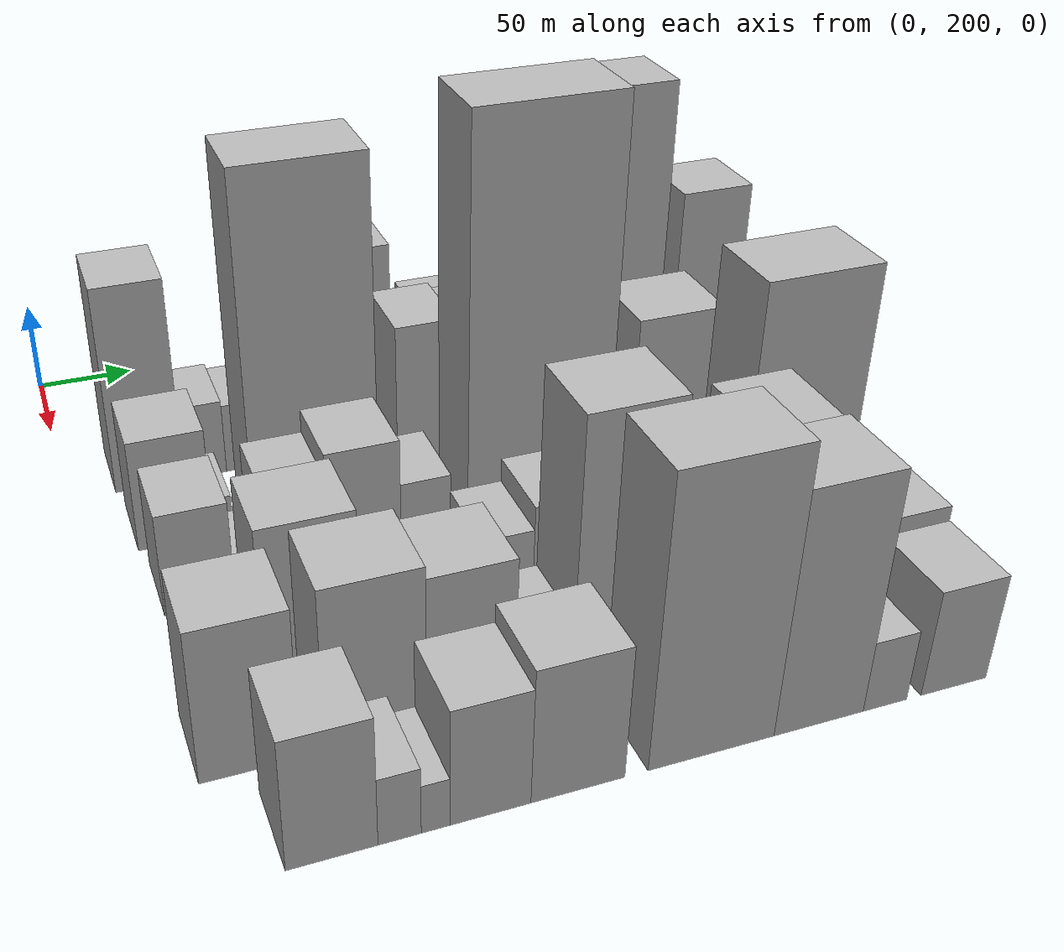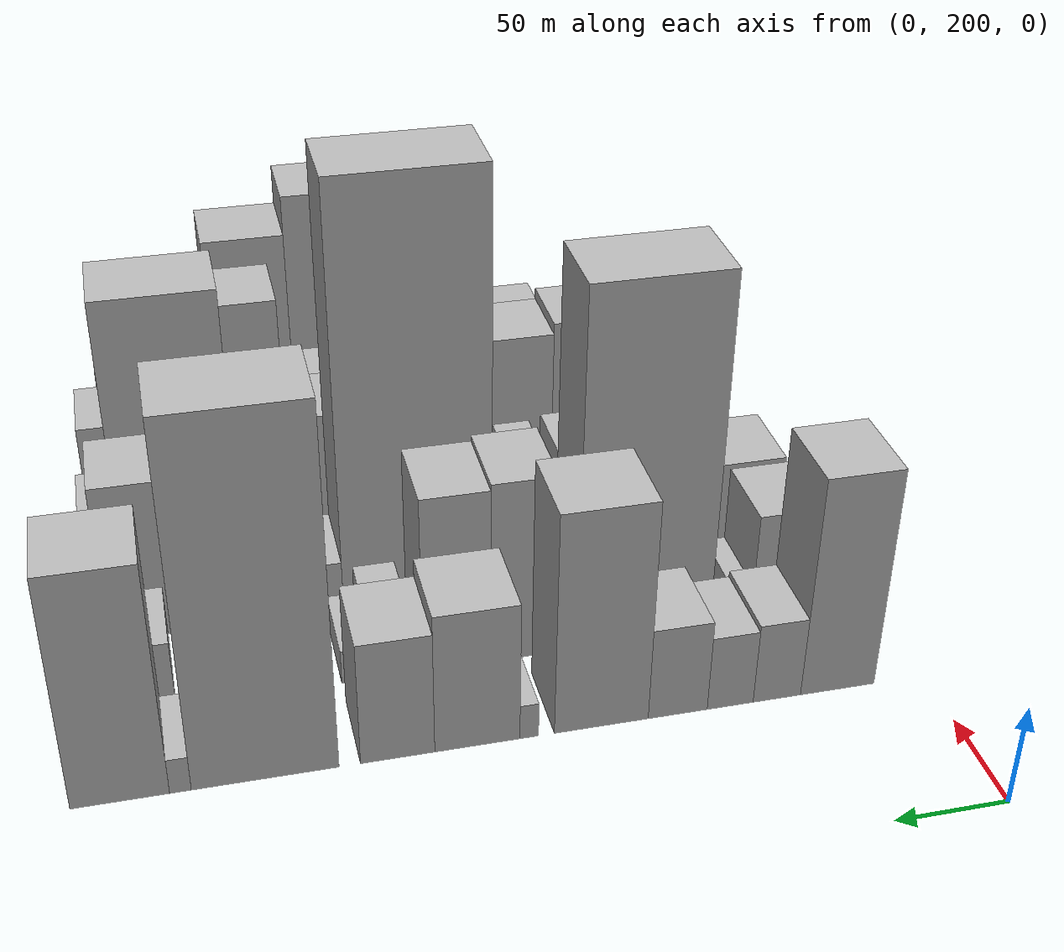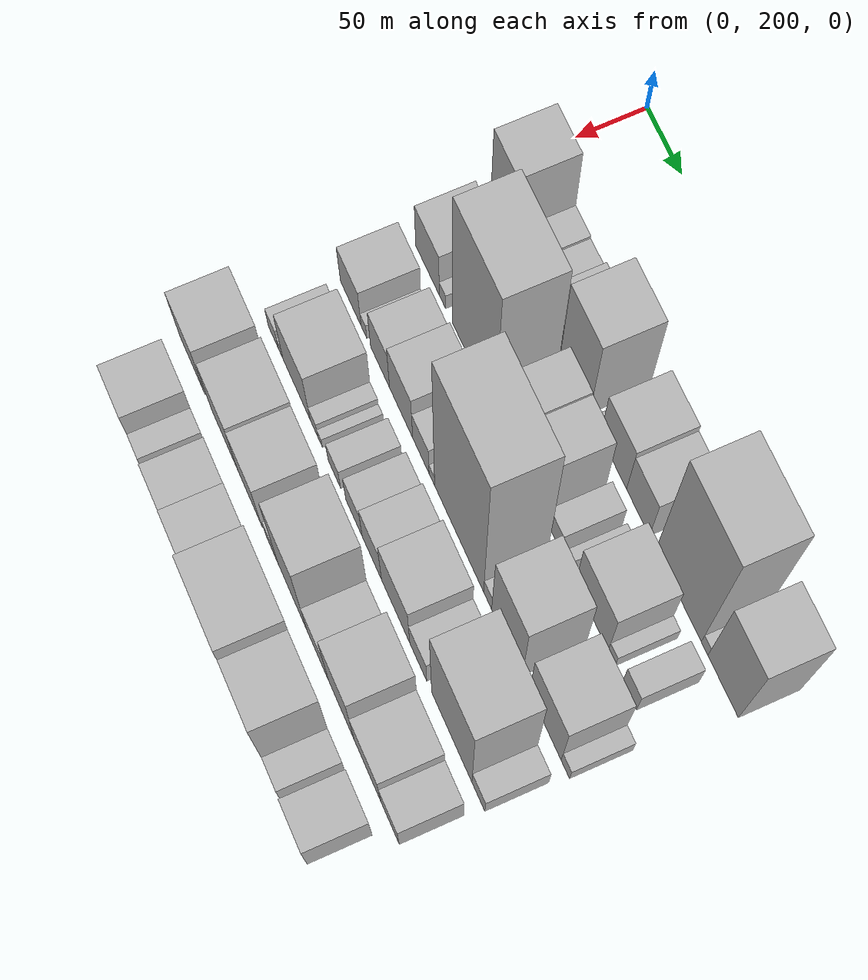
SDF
<sdf version="1.6">
 <world name="default">
  <model name="building_33">
   <static>1</static>
   <pose>100.0000 241.1143 0 0.000000 0.000000 0.000000</pose>
   <link name="link">
    <pose>0 0 57.00 0 0 0</pose>
    <collision name="collision"><geometry><box><size>40.0000 34.5283 114.0000</size></box></geometry></collision>
    <visual name="visual">
     <cast_shadows>0</cast_shadows>
     <geometry><box><size>40.0000 34.5283 114.0000</size></box></geometry>
     <material>
      <script>
       <uri>model://HANNAS_wall/materials/scripts</uri>
       <uri>model://HANNAS_wall/materials/textures</uri>
       <name>vrc/HANNAS_wall</name>
      </script>
     </material>
    </visual>
   </link>
  </model>
  <model name="building_34">
   <static>1</static>
   <pose>100.0000 269.3586 0 0.000000 0.000000 0.000000</pose>
   <link name="link">
    <pose>0 0 21.00 0 0 0</pose>
    <collision name="collision"><geometry><box><size>40.0000 21.9605 42.0000</size></box></geometry></collision>
    <visual name="visual">
     <cast_shadows>0</cast_shadows>
     <geometry><box><size>40.0000 21.9605 42.0000</size></box></geometry>
     <material>
      <script>
       <uri>model://HANNAS_wall/materials/scripts</uri>
       <uri>model://HANNAS_wall/materials/textures</uri>
       <name>vrc/HANNAS_wall</name>
      </script>
     </material>
    </visual>
   </link>
  </model>
  <model name="building_35">
   <static>1</static>
   <pose>100.0000 290.8779 0 0.000000 0.000000 0.000000</pose>
   <link name="link">
    <pose>0 0 19.50 0 0 0</pose>
    <collision name="collision"><geometry><box><size>40.0000 21.0780 39.0000</size></box></geometry></collision>
    <visual name="visual">
     <cast_shadows>0</cast_shadows>
     <geometry><box><size>40.0000 21.0780 39.0000</size></box></geometry>
     <material>
      <script>
       <uri>model://HANNAS_wall/materials/scripts</uri>
       <uri>model://HANNAS_wall/materials/textures</uri>
       <name>vrc/HANNAS_wall</name>
      </script>
     </material>
    </visual>
   </link>
  </model>
  <model name="building_36">
   <static>1</static>
   <pose>100.0000 314.7854 0 0.000000 0.000000 0.000000</pose>
   <link name="link">
    <pose>0 0 24.00 0 0 0</pose>
    <collision name="collision"><geometry><box><size>40.0000 26.7369 48.0000</size></box></geometry></collision>
    <visual name="visual">
     <cast_shadows>0</cast_shadows>
     <geometry><box><size>40.0000 26.7369 48.0000</size></box></geometry>
     <material>
      <script>
       <uri>model://HANNAS_wall/materials/scripts</uri>
       <uri>model://HANNAS_wall/materials/textures</uri>
       <name>vrc/HANNAS_wall</name>
      </script>
     </material>
    </visual>
   </link>
  </model>
  <model name="building_37">
   <static>1</static>
   <pose>100.0000 349.0575 0 0.000000 0.000000 0.000000</pose>
   <link name="link">
    <pose>0 0 57.00 0 0 0</pose>
    <collision name="collision"><geometry><box><size>40.0000 41.8073 114.0000</size></box></geometry></collision>
    <visual name="visual">
     <cast_shadows>0</cast_shadows>
     <geometry><box><size>40.0000 41.8073 114.0000</size></box></geometry>
     <material>
      <script>
       <uri>model://HANNAS_wall/materials/scripts</uri>
       <uri>model://HANNAS_wall/materials/textures</uri>
       <name>vrc/HANNAS_wall</name>
      </script>
     </material>
    </visual>
   </link>
  </model>
  <model name="building_38">
   <static>1</static>
   <pose>100.0000 381.0340 0 0.000000 0.000000 0.000000</pose>
   <link name="link">
    <pose>0 0 9.00 0 0 0</pose>
    <collision name="collision"><geometry><box><size>40.0000 8.1457 18.0000</size></box></geometry></collision>
    <visual name="visual">
     <cast_shadows>0</cast_shadows>
     <geometry><box><size>40.0000 8.1457 18.0000</size></box></geometry>
     <material>
      <script>
       <uri>model://HANNAS_wall/materials/scripts</uri>
       <uri>model://HANNAS_wall/materials/textures</uri>
       <name>vrc/HANNAS_wall</name>
      </script>
     </material>
    </visual>
   </link>
  </model>
  <model name="building_39">
   <static>1</static>
   <pose>100.0000 403.5314 0 0.000000 0.000000 0.000000</pose>
   <link name="link">
    <pose>0 0 36.00 0 0 0</pose>
    <collision name="collision"><geometry><box><size>40.0000 36.8492 72.0000</size></box></geometry></collision>
    <visual name="visual">
     <cast_shadows>0</cast_shadows>
     <geometry><box><size>40.0000 36.8492 72.0000</size></box></geometry>
     <material>
      <script>
       <uri>model://HANNAS_wall/materials/scripts</uri>
       <uri>model://HANNAS_wall/materials/textures</uri>
       <name>vrc/HANNAS_wall</name>
      </script>
     </material>
    </visual>
   </link>
  </model>
  <model name="building_40">
   <static>1</static>
   <pose>100.0000 437.7811 0 0.000000 0.000000 0.000000</pose>
   <link name="link">
    <pose>0 0 31.50 0 0 0</pose>
    <collision name="collision"><geometry><box><size>40.0000 31.6502 63.0000</size></box></geometry></collision>
    <visual name="visual">
     <cast_shadows>0</cast_shadows>
     <geometry><box><size>40.0000 31.6502 63.0000</size></box></geometry>
     <material>
      <script>
       <uri>model://HANNAS_wall/materials/scripts</uri>
       <uri>model://HANNAS_wall/materials/textures</uri>
       <name>vrc/HANNAS_wall</name>
      </script>
     </material>
    </visual>
   </link>
  </model>
  <model name="building_41">
   <static>1</static>
   <pose>100.0000 493.1594 0 0.000000 0.000000 0.000000</pose>
   <link name="link">
    <pose>0 0 90.00 0 0 0</pose>
    <collision name="collision"><geometry><box><size>40.0000 61.1064 180.0000</size></box></geometry></collision>
    <visual name="visual">
     <cast_shadows>0</cast_shadows>
     <geometry><box><size>40.0000 61.1064 180.0000</size></box></geometry>
     <material>
      <script>
       <uri>model://HANNAS_wall/materials/scripts</uri>
       <uri>model://HANNAS_wall/materials/textures</uri>
       <name>vrc/HANNAS_wall</name>
      </script>
     </material>
    </visual>
   </link>
  </model>
  <model name="building_42">
   <static>1</static>
   <pose>100.0000 528.1135 0 0.000000 0.000000 0.000000</pose>
   <link name="link">
    <pose>0 0 9.00 0 0 0</pose>
    <collision name="collision"><geometry><box><size>40.0000 8.8017 18.0000</size></box></geometry></collision>
    <visual name="visual">
     <cast_shadows>0</cast_shadows>
     <geometry><box><size>40.0000 8.8017 18.0000</size></box></geometry>
     <material>
      <script>
       <uri>model://HANNAS_wall/materials/scripts</uri>
       <uri>model://HANNAS_wall/materials/textures</uri>
       <name>vrc/HANNAS_wall</name>
      </script>
     </material>
    </visual>
   </link>
  </model>
  <model name="building_43">
   <static>1</static>
   <pose>100.0000 552.5174 0 0.000000 0.000000 0.000000</pose>
   <link name="link">
    <pose>0 0 58.50 0 0 0</pose>
    <collision name="collision"><geometry><box><size>40.0000 40.0060 117.0000</size></box></geometry></collision>
    <visual name="visual">
     <cast_shadows>0</cast_shadows>
     <geometry><box><size>40.0000 40.0060 117.0000</size></box></geometry>
     <material>
      <script>
       <uri>model://HANNAS_wall/materials/scripts</uri>
       <uri>model://HANNAS_wall/materials/textures</uri>
       <name>vrc/HANNAS_wall</name>
      </script>
     </material>
    </visual>
   </link>
  </model>
  <model name="building_81">
   <static>1</static>
   <pose>152.0000 244.6676 0 0.000000 0.000000 0.000000</pose>
   <link name="link">
    <pose>0 0 30.00 0 0 0</pose>
    <collision name="collision"><geometry><box><size>40.0000 35.9738 60.0000</size></box></geometry></collision>
    <visual name="visual">
     <cast_shadows>0</cast_shadows>
     <geometry><box><size>40.0000 35.9738 60.0000</size></box></geometry>
     <material>
      <script>
       <uri>model://HANNAS_wall/materials/scripts</uri>
       <uri>model://HANNAS_wall/materials/textures</uri>
       <name>vrc/HANNAS_wall</name>
      </script>
     </material>
    </visual>
   </link>
  </model>
  <model name="building_82">
   <static>1</static>
   <pose>152.0000 267.5932 0 0.000000 0.000000 0.000000</pose>
   <link name="link">
    <pose>0 0 10.50 0 0 0</pose>
    <collision name="collision"><geometry><box><size>40.0000 9.8774 21.0000</size></box></geometry></collision>
    <visual name="visual">
     <cast_shadows>0</cast_shadows>
     <geometry><box><size>40.0000 9.8774 21.0000</size></box></geometry>
     <material>
      <script>
       <uri>model://HANNAS_wall/materials/scripts</uri>
       <uri>model://HANNAS_wall/materials/textures</uri>
       <name>vrc/HANNAS_wall</name>
      </script>
     </material>
    </visual>
   </link>
  </model>
  <model name="building_83">
   <static>1</static>
   <pose>152.0000 314.2761 0 0.000000 0.000000 0.000000</pose>
   <link name="link">
    <pose>0 0 93.00 0 0 0</pose>
    <collision name="collision"><geometry><box><size>40.0000 63.4884 186.0000</size></box></geometry></collision>
    <visual name="visual">
     <cast_shadows>0</cast_shadows>
     <geometry><box><size>40.0000 63.4884 186.0000</size></box></geometry>
     <material>
      <script>
       <uri>model://HANNAS_wall/materials/scripts</uri>
       <uri>model://HANNAS_wall/materials/textures</uri>
       <name>vrc/HANNAS_wall</name>
      </script>
     </material>
    </visual>
   </link>
  </model>
  <model name="building_84">
   <static>1</static>
   <pose>152.0000 370.9635 0 0.000000 0.000000 0.000000</pose>
   <link name="link">
    <pose>0 0 48.00 0 0 0</pose>
    <collision name="collision"><geometry><box><size>40.0000 29.8863 96.0000</size></box></geometry></collision>
    <visual name="visual">
     <cast_shadows>0</cast_shadows>
     <geometry><box><size>40.0000 29.8863 96.0000</size></box></geometry>
     <material>
      <script>
       <uri>model://HANNAS_wall/materials/scripts</uri>
       <uri>model://HANNAS_wall/materials/textures</uri>
       <name>vrc/HANNAS_wall</name>
      </script>
     </material>
    </visual>
   </link>
  </model>
  <model name="building_85">
   <static>1</static>
   <pose>152.0000 401.4895 0 0.000000 0.000000 0.000000</pose>
   <link name="link">
    <pose>0 0 46.50 0 0 0</pose>
    <collision name="collision"><geometry><box><size>40.0000 31.1658 93.0000</size></box></geometry></collision>
    <visual name="visual">
     <cast_shadows>0</cast_shadows>
     <geometry><box><size>40.0000 31.1658 93.0000</size></box></geometry>
     <material>
      <script>
       <uri>model://HANNAS_wall/materials/scripts</uri>
       <uri>model://HANNAS_wall/materials/textures</uri>
       <name>vrc/HANNAS_wall</name>
      </script>
     </material>
    </visual>
   </link>
  </model>
  <model name="building_86">
   <static>1</static>
   <pose>152.0000 431.6163 0 0.000000 0.000000 0.000000</pose>
   <link name="link">
    <pose>0 0 16.50 0 0 0</pose>
    <collision name="collision"><geometry><box><size>40.0000 19.0876 33.0000</size></box></geometry></collision>
    <visual name="visual">
     <cast_shadows>0</cast_shadows>
     <geometry><box><size>40.0000 19.0876 33.0000</size></box></geometry>
     <material>
      <script>
       <uri>model://HANNAS_wall/materials/scripts</uri>
       <uri>model://HANNAS_wall/materials/textures</uri>
       <name>vrc/HANNAS_wall</name>
      </script>
     </material>
    </visual>
   </link>
  </model>
  <model name="building_87">
   <static>1</static>
   <pose>152.0000 449.3652 0 0.000000 0.000000 0.000000</pose>
   <link name="link">
    <pose>0 0 9.00 0 0 0</pose>
    <collision name="collision"><geometry><box><size>40.0000 8.4102 18.0000</size></box></geometry></collision>
    <visual name="visual">
     <cast_shadows>0</cast_shadows>
     <geometry><box><size>40.0000 8.4102 18.0000</size></box></geometry>
     <material>
      <script>
       <uri>model://HANNAS_wall/materials/scripts</uri>
       <uri>model://HANNAS_wall/materials/textures</uri>
       <name>vrc/HANNAS_wall</name>
      </script>
     </material>
    </visual>
   </link>
  </model>
  <model name="building_88">
   <static>1</static>
   <pose>152.0000 483.9628 0 0.000000 0.000000 0.000000</pose>
   <link name="link">
    <pose>0 0 37.50 0 0 0</pose>
    <collision name="collision"><geometry><box><size>40.0000 44.7851 75.0000</size></box></geometry></collision>
    <visual name="visual">
     <cast_shadows>0</cast_shadows>
     <geometry><box><size>40.0000 44.7851 75.0000</size></box></geometry>
     <material>
      <script>
       <uri>model://HANNAS_wall/materials/scripts</uri>
       <uri>model://HANNAS_wall/materials/textures</uri>
       <name>vrc/HANNAS_wall</name>
      </script>
     </material>
    </visual>
   </link>
  </model>
  <model name="building_89">
   <static>1</static>
   <pose>152.0000 511.2450 0 0.000000 0.000000 0.000000</pose>
   <link name="link">
    <pose>0 0 10.50 0 0 0</pose>
    <collision name="collision"><geometry><box><size>40.0000 9.7792 21.0000</size></box></geometry></collision>
    <visual name="visual">
     <cast_shadows>0</cast_shadows>
     <geometry><box><size>40.0000 9.7792 21.0000</size></box></geometry>
     <material>
      <script>
       <uri>model://HANNAS_wall/materials/scripts</uri>
       <uri>model://HANNAS_wall/materials/textures</uri>
       <name>vrc/HANNAS_wall</name>
      </script>
     </material>
    </visual>
   </link>
  </model>
  <model name="building_90">
   <static>1</static>
   <pose>152.0000 535.3604 0 0.000000 0.000000 0.000000</pose>
   <link name="link">
    <pose>0 0 18.00 0 0 0</pose>
    <collision name="collision"><geometry><box><size>40.0000 18.4517 36.0000</size></box></geometry></collision>
    <visual name="visual">
     <cast_shadows>0</cast_shadows>
     <geometry><box><size>40.0000 18.4517 36.0000</size></box></geometry>
     <material>
      <script>
       <uri>model://HANNAS_wall/materials/scripts</uri>
       <uri>model://HANNAS_wall/materials/textures</uri>
       <name>vrc/HANNAS_wall</name>
      </script>
     </material>
    </visual>
   </link>
  </model>
  <model name="building_133">
   <static>1</static>
   <pose>204.0000 245.8826 0 0.000000 0.000000 0.000000</pose>
   <link name="link">
    <pose>0 0 27.00 0 0 0</pose>
    <collision name="collision"><geometry><box><size>40.0000 32.1524 54.0000</size></box></geometry></collision>
    <visual name="visual">
     <cast_shadows>0</cast_shadows>
     <geometry><box><size>40.0000 32.1524 54.0000</size></box></geometry>
     <material>
      <script>
       <uri>model://HANNAS_wall/materials/scripts</uri>
       <uri>model://HANNAS_wall/materials/textures</uri>
       <name>vrc/HANNAS_wall</name>
      </script>
     </material>
    </visual>
   </link>
  </model>
  <model name="building_134">
   <static>1</static>
   <pose>204.0000 266.3261 0 0.000000 0.000000 0.000000</pose>
   <link name="link">
    <pose>0 0 10.50 0 0 0</pose>
    <collision name="collision"><geometry><box><size>40.0000 8.7346 21.0000</size></box></geometry></collision>
    <visual name="visual">
     <cast_shadows>0</cast_shadows>
     <geometry><box><size>40.0000 8.7346 21.0000</size></box></geometry>
     <material>
      <script>
       <uri>model://HANNAS_wall/materials/scripts</uri>
       <uri>model://HANNAS_wall/materials/textures</uri>
       <name>vrc/HANNAS_wall</name>
      </script>
     </material>
    </visual>
   </link>
  </model>
  <model name="building_135">
   <static>1</static>
   <pose>204.0000 291.2422 0 0.000000 0.000000 0.000000</pose>
   <link name="link">
    <pose>0 0 28.50 0 0 0</pose>
    <collision name="collision"><geometry><box><size>40.0000 29.0976 57.0000</size></box></geometry></collision>
    <visual name="visual">
     <cast_shadows>0</cast_shadows>
     <geometry><box><size>40.0000 29.0976 57.0000</size></box></geometry>
     <material>
      <script>
       <uri>model://HANNAS_wall/materials/scripts</uri>
       <uri>model://HANNAS_wall/materials/textures</uri>
       <name>vrc/HANNAS_wall</name>
      </script>
     </material>
    </visual>
   </link>
  </model>
  <model name="building_136">
   <static>1</static>
   <pose>204.0000 323.2574 0 0.000000 0.000000 0.000000</pose>
   <link name="link">
    <pose>0 0 34.50 0 0 0</pose>
    <collision name="collision"><geometry><box><size>40.0000 34.9329 69.0000</size></box></geometry></collision>
    <visual name="visual">
     <cast_shadows>0</cast_shadows>
     <geometry><box><size>40.0000 34.9329 69.0000</size></box></geometry>
     <material>
      <script>
       <uri>model://HANNAS_wall/materials/scripts</uri>
       <uri>model://HANNAS_wall/materials/textures</uri>
       <name>vrc/HANNAS_wall</name>
      </script>
     </material>
    </visual>
   </link>
  </model>
  <model name="building_137">
   <static>1</static>
   <pose>204.0000 352.9500 0 0.000000 0.000000 0.000000</pose>
   <link name="link">
    <pose>0 0 22.50 0 0 0</pose>
    <collision name="collision"><geometry><box><size>40.0000 24.4522 45.0000</size></box></geometry></collision>
    <visual name="visual">
     <cast_shadows>0</cast_shadows>
     <geometry><box><size>40.0000 24.4522 45.0000</size></box></geometry>
     <material>
      <script>
       <uri>model://HANNAS_wall/materials/scripts</uri>
       <uri>model://HANNAS_wall/materials/textures</uri>
       <name>vrc/HANNAS_wall</name>
      </script>
     </material>
    </visual>
   </link>
  </model>
  <model name="building_138">
   <static>1</static>
   <pose>204.0000 369.2969 0 0.000000 0.000000 0.000000</pose>
   <link name="link">
    <pose>0 0 9.00 0 0 0</pose>
    <collision name="collision"><geometry><box><size>40.0000 8.2417 18.0000</size></box></geometry></collision>
    <visual name="visual">
     <cast_shadows>0</cast_shadows>
     <geometry><box><size>40.0000 8.2417 18.0000</size></box></geometry>
     <material>
      <script>
       <uri>model://HANNAS_wall/materials/scripts</uri>
       <uri>model://HANNAS_wall/materials/textures</uri>
       <name>vrc/HANNAS_wall</name>
      </script>
     </material>
    </visual>
   </link>
  </model>
  <model name="building_139">
   <static>1</static>
   <pose>204.0000 409.0852 0 0.000000 0.000000 0.000000</pose>
   <link name="link">
    <pose>0 0 109.50 0 0 0</pose>
    <collision name="collision"><geometry><box><size>40.0000 71.3349 219.0000</size></box></geometry></collision>
    <visual name="visual">
     <cast_shadows>0</cast_shadows>
     <geometry><box><size>40.0000 71.3349 219.0000</size></box></geometry>
     <material>
      <script>
       <uri>model://HANNAS_wall/materials/scripts</uri>
       <uri>model://HANNAS_wall/materials/textures</uri>
       <name>vrc/HANNAS_wall</name>
      </script>
     </material>
    </visual>
   </link>
  </model>
  <model name="building_140">
   <static>1</static>
   <pose>204.0000 450.5262 0 0.000000 0.000000 0.000000</pose>
   <link name="link">
    <pose>0 0 13.50 0 0 0</pose>
    <collision name="collision"><geometry><box><size>40.0000 11.5470 27.0000</size></box></geometry></collision>
    <visual name="visual">
     <cast_shadows>0</cast_shadows>
     <geometry><box><size>40.0000 11.5470 27.0000</size></box></geometry>
     <material>
      <script>
       <uri>model://HANNAS_wall/materials/scripts</uri>
       <uri>model://HANNAS_wall/materials/textures</uri>
       <name>vrc/HANNAS_wall</name>
      </script>
     </material>
    </visual>
   </link>
  </model>
  <model name="building_141">
   <static>1</static>
   <pose>204.0000 477.8938 0 0.000000 0.000000 0.000000</pose>
   <link name="link">
    <pose>0 0 54.00 0 0 0</pose>
    <collision name="collision"><geometry><box><size>40.0000 43.1884 108.0000</size></box></geometry></collision>
    <visual name="visual">
     <cast_shadows>0</cast_shadows>
     <geometry><box><size>40.0000 43.1884 108.0000</size></box></geometry>
     <material>
      <script>
       <uri>model://HANNAS_wall/materials/scripts</uri>
       <uri>model://HANNAS_wall/materials/textures</uri>
       <name>vrc/HANNAS_wall</name>
      </script>
     </material>
    </visual>
   </link>
  </model>
  <model name="building_142">
   <static>1</static>
   <pose>204.0000 531.3603 0 0.000000 0.000000 0.000000</pose>
   <link name="link">
    <pose>0 0 42.00 0 0 0</pose>
    <collision name="collision"><geometry><box><size>40.0000 43.7445 84.0000</size></box></geometry></collision>
    <visual name="visual">
     <cast_shadows>0</cast_shadows>
     <geometry><box><size>40.0000 43.7445 84.0000</size></box></geometry>
     <material>
      <script>
       <uri>model://HANNAS_wall/materials/scripts</uri>
       <uri>model://HANNAS_wall/materials/textures</uri>
       <name>vrc/HANNAS_wall</name>
      </script>
     </material>
    </visual>
   </link>
  </model>
  <model name="building_143">
   <static>1</static>
   <pose>204.0000 559.0138 0 0.000000 0.000000 0.000000</pose>
   <link name="link">
    <pose>0 0 12.00 0 0 0</pose>
    <collision name="collision"><geometry><box><size>40.0000 11.5624 24.0000</size></box></geometry></collision>
    <visual name="visual">
     <cast_shadows>0</cast_shadows>
     <geometry><box><size>40.0000 11.5624 24.0000</size></box></geometry>
     <material>
      <script>
       <uri>model://HANNAS_wall/materials/scripts</uri>
       <uri>model://HANNAS_wall/materials/textures</uri>
       <name>vrc/HANNAS_wall</name>
      </script>
     </material>
    </visual>
   </link>
  </model>
  <model name="building_185">
   <static>1</static>
   <pose>256.0000 247.2263 0 0.000000 0.000000 0.000000</pose>
   <link name="link">
    <pose>0 0 15.00 0 0 0</pose>
    <collision name="collision"><geometry><box><size>40.0000 15.7489 30.0000</size></box></geometry></collision>
    <visual name="visual">
     <cast_shadows>0</cast_shadows>
     <geometry><box><size>40.0000 15.7489 30.0000</size></box></geometry>
     <material>
      <script>
       <uri>model://HANNAS_wall/materials/scripts</uri>
       <uri>model://HANNAS_wall/materials/textures</uri>
       <name>vrc/HANNAS_wall</name>
      </script>
     </material>
    </visual>
   </link>
  </model>
  <model name="building_186">
   <static>1</static>
   <pose>256.0000 258.7802 0 0.000000 0.000000 0.000000</pose>
   <link name="link">
    <pose>0 0 9.00 0 0 0</pose>
    <collision name="collision"><geometry><box><size>40.0000 7.3590 18.0000</size></box></geometry></collision>
    <visual name="visual">
     <cast_shadows>0</cast_shadows>
     <geometry><box><size>40.0000 7.3590 18.0000</size></box></geometry>
     <material>
      <script>
       <uri>model://HANNAS_wall/materials/scripts</uri>
       <uri>model://HANNAS_wall/materials/textures</uri>
       <name>vrc/HANNAS_wall</name>
      </script>
     </material>
    </visual>
   </link>
  </model>
  <model name="building_187">
   <static>1</static>
   <pose>256.0000 283.9196 0 0.000000 0.000000 0.000000</pose>
   <link name="link">
    <pose>0 0 37.50 0 0 0</pose>
    <collision name="collision"><geometry><box><size>40.0000 42.9198 75.0000</size></box></geometry></collision>
    <visual name="visual">
     <cast_shadows>0</cast_shadows>
     <geometry><box><size>40.0000 42.9198 75.0000</size></box></geometry>
     <material>
      <script>
       <uri>model://HANNAS_wall/materials/scripts</uri>
       <uri>model://HANNAS_wall/materials/textures</uri>
       <name>vrc/HANNAS_wall</name>
      </script>
     </material>
    </visual>
   </link>
  </model>
  <model name="building_188">
   <static>1</static>
   <pose>256.0000 311.2845 0 0.000000 0.000000 0.000000</pose>
   <link name="link">
    <pose>0 0 12.00 0 0 0</pose>
    <collision name="collision"><geometry><box><size>40.0000 11.8100 24.0000</size></box></geometry></collision>
    <visual name="visual">
     <cast_shadows>0</cast_shadows>
     <geometry><box><size>40.0000 11.8100 24.0000</size></box></geometry>
     <material>
      <script>
       <uri>model://HANNAS_wall/materials/scripts</uri>
       <uri>model://HANNAS_wall/materials/textures</uri>
       <name>vrc/HANNAS_wall</name>
      </script>
     </material>
    </visual>
   </link>
  </model>
  <model name="building_189">
   <static>1</static>
   <pose>256.0000 320.7090 0 0.000000 0.000000 0.000000</pose>
   <link name="link">
    <pose>0 0 7.50 0 0 0</pose>
    <collision name="collision"><geometry><box><size>40.0000 7.0390 15.0000</size></box></geometry></collision>
    <visual name="visual">
     <cast_shadows>0</cast_shadows>
     <geometry><box><size>40.0000 7.0390 15.0000</size></box></geometry>
     <material>
      <script>
       <uri>model://HANNAS_wall/materials/scripts</uri>
       <uri>model://HANNAS_wall/materials/textures</uri>
       <name>vrc/HANNAS_wall</name>
      </script>
     </material>
    </visual>
   </link>
  </model>
  <model name="building_190">
   <static>1</static>
   <pose>256.0000 342.7334 0 0.000000 0.000000 0.000000</pose>
   <link name="link">
    <pose>0 0 16.50 0 0 0</pose>
    <collision name="collision"><geometry><box><size>40.0000 19.0098 33.0000</size></box></geometry></collision>
    <visual name="visual">
     <cast_shadows>0</cast_shadows>
     <geometry><box><size>40.0000 19.0098 33.0000</size></box></geometry>
     <material>
      <script>
       <uri>model://HANNAS_wall/materials/scripts</uri>
       <uri>model://HANNAS_wall/materials/textures</uri>
       <name>vrc/HANNAS_wall</name>
      </script>
     </material>
    </visual>
   </link>
  </model>
  <model name="building_191">
   <static>1</static>
   <pose>256.0000 372.5297 0 0.000000 0.000000 0.000000</pose>
   <link name="link">
    <pose>0 0 22.50 0 0 0</pose>
    <collision name="collision"><geometry><box><size>40.0000 24.5828 45.0000</size></box></geometry></collision>
    <visual name="visual">
     <cast_shadows>0</cast_shadows>
     <geometry><box><size>40.0000 24.5828 45.0000</size></box></geometry>
     <material>
      <script>
       <uri>model://HANNAS_wall/materials/scripts</uri>
       <uri>model://HANNAS_wall/materials/textures</uri>
       <name>vrc/HANNAS_wall</name>
      </script>
     </material>
    </visual>
   </link>
  </model>
  <model name="building_192">
   <static>1</static>
   <pose>256.0000 399.3007 0 0.000000 0.000000 0.000000</pose>
   <link name="link">
    <pose>0 0 28.50 0 0 0</pose>
    <collision name="collision"><geometry><box><size>40.0000 28.9593 57.0000</size></box></geometry></collision>
    <visual name="visual">
     <cast_shadows>0</cast_shadows>
     <geometry><box><size>40.0000 28.9593 57.0000</size></box></geometry>
     <material>
      <script>
       <uri>model://HANNAS_wall/materials/scripts</uri>
       <uri>model://HANNAS_wall/materials/textures</uri>
       <name>vrc/HANNAS_wall</name>
      </script>
     </material>
    </visual>
   </link>
  </model>
  <model name="building_193">
   <static>1</static>
   <pose>256.0000 434.5557 0 0.000000 0.000000 0.000000</pose>
   <link name="link">
    <pose>0 0 37.50 0 0 0</pose>
    <collision name="collision"><geometry><box><size>40.0000 41.5506 75.0000</size></box></geometry></collision>
    <visual name="visual">
     <cast_shadows>0</cast_shadows>
     <geometry><box><size>40.0000 41.5506 75.0000</size></box></geometry>
     <material>
      <script>
       <uri>model://HANNAS_wall/materials/scripts</uri>
       <uri>model://HANNAS_wall/materials/textures</uri>
       <name>vrc/HANNAS_wall</name>
      </script>
     </material>
    </visual>
   </link>
  </model>
  <model name="building_194">
   <static>1</static>
   <pose>256.0000 467.6271 0 0.000000 0.000000 0.000000</pose>
   <link name="link">
    <pose>0 0 22.50 0 0 0</pose>
    <collision name="collision"><geometry><box><size>40.0000 24.5923 45.0000</size></box></geometry></collision>
    <visual name="visual">
     <cast_shadows>0</cast_shadows>
     <geometry><box><size>40.0000 24.5923 45.0000</size></box></geometry>
     <material>
      <script>
       <uri>model://HANNAS_wall/materials/scripts</uri>
       <uri>model://HANNAS_wall/materials/textures</uri>
       <name>vrc/HANNAS_wall</name>
      </script>
     </material>
    </visual>
   </link>
  </model>
  <model name="building_195">
   <static>1</static>
   <pose>256.0000 515.4854 0 0.000000 0.000000 0.000000</pose>
   <link name="link">
    <pose>0 0 73.50 0 0 0</pose>
    <collision name="collision"><geometry><box><size>40.0000 57.1242 147.0000</size></box></geometry></collision>
    <visual name="visual">
     <cast_shadows>0</cast_shadows>
     <geometry><box><size>40.0000 57.1242 147.0000</size></box></geometry>
     <material>
      <script>
       <uri>model://HANNAS_wall/materials/scripts</uri>
       <uri>model://HANNAS_wall/materials/textures</uri>
       <name>vrc/HANNAS_wall</name>
      </script>
     </material>
    </visual>
   </link>
  </model>
  <model name="building_196">
   <static>1</static>
   <pose>256.0000 553.0529 0 0.000000 0.000000 0.000000</pose>
   <link name="link">
    <pose>0 0 16.50 0 0 0</pose>
    <collision name="collision"><geometry><box><size>40.0000 18.0109 33.0000</size></box></geometry></collision>
    <visual name="visual">
     <cast_shadows>0</cast_shadows>
     <geometry><box><size>40.0000 18.0109 33.0000</size></box></geometry>
     <material>
      <script>
       <uri>model://HANNAS_wall/materials/scripts</uri>
       <uri>model://HANNAS_wall/materials/textures</uri>
       <name>vrc/HANNAS_wall</name>
      </script>
     </material>
    </visual>
   </link>
  </model>
  <model name="building_235">
   <static>1</static>
   <pose>308.0000 244.2561 0 0.000000 0.000000 0.000000</pose>
   <link name="link">
    <pose>0 0 37.50 0 0 0</pose>
    <collision name="collision"><geometry><box><size>40.0000 40.2621 75.0000</size></box></geometry></collision>
    <visual name="visual">
     <cast_shadows>0</cast_shadows>
     <geometry><box><size>40.0000 40.2621 75.0000</size></box></geometry>
     <material>
      <script>
       <uri>model://HANNAS_wall/materials/scripts</uri>
       <uri>model://HANNAS_wall/materials/textures</uri>
       <name>vrc/HANNAS_wall</name>
      </script>
     </material>
    </visual>
   </link>
  </model>
  <model name="building_236">
   <static>1</static>
   <pose>308.0000 295.8211 0 0.000000 0.000000 0.000000</pose>
   <link name="link">
    <pose>0 0 40.50 0 0 0</pose>
    <collision name="collision"><geometry><box><size>40.0000 42.8680 81.0000</size></box></geometry></collision>
    <visual name="visual">
     <cast_shadows>0</cast_shadows>
     <geometry><box><size>40.0000 42.8680 81.0000</size></box></geometry>
     <material>
      <script>
       <uri>model://HANNAS_wall/materials/scripts</uri>
       <uri>model://HANNAS_wall/materials/textures</uri>
       <name>vrc/HANNAS_wall</name>
      </script>
     </material>
    </visual>
   </link>
  </model>
  <model name="building_237">
   <static>1</static>
   <pose>308.0000 336.3885 0 0.000000 0.000000 0.000000</pose>
   <link name="link">
    <pose>0 0 37.50 0 0 0</pose>
    <collision name="collision"><geometry><box><size>40.0000 38.2667 75.0000</size></box></geometry></collision>
    <visual name="visual">
     <cast_shadows>0</cast_shadows>
     <geometry><box><size>40.0000 38.2667 75.0000</size></box></geometry>
     <material>
      <script>
       <uri>model://HANNAS_wall/materials/scripts</uri>
       <uri>model://HANNAS_wall/materials/textures</uri>
       <name>vrc/HANNAS_wall</name>
      </script>
     </material>
    </visual>
   </link>
  </model>
  <model name="building_238">
   <static>1</static>
   <pose>308.0000 371.7363 0 0.000000 0.000000 0.000000</pose>
   <link name="link">
    <pose>0 0 18.00 0 0 0</pose>
    <collision name="collision"><geometry><box><size>40.0000 18.4290 36.0000</size></box></geometry></collision>
    <visual name="visual">
     <cast_shadows>0</cast_shadows>
     <geometry><box><size>40.0000 18.4290 36.0000</size></box></geometry>
     <material>
      <script>
       <uri>model://HANNAS_wall/materials/scripts</uri>
       <uri>model://HANNAS_wall/materials/textures</uri>
       <name>vrc/HANNAS_wall</name>
      </script>
     </material>
    </visual>
   </link>
  </model>
  <model name="building_239">
   <static>1</static>
   <pose>308.0000 402.7614 0 0.000000 0.000000 0.000000</pose>
   <link name="link">
    <pose>0 0 67.50 0 0 0</pose>
    <collision name="collision"><geometry><box><size>40.0000 43.6212 135.0000</size></box></geometry></collision>
    <visual name="visual">
     <cast_shadows>0</cast_shadows>
     <geometry><box><size>40.0000 43.6212 135.0000</size></box></geometry>
     <material>
      <script>
       <uri>model://HANNAS_wall/materials/scripts</uri>
       <uri>model://HANNAS_wall/materials/textures</uri>
       <name>vrc/HANNAS_wall</name>
      </script>
     </material>
    </visual>
   </link>
  </model>
  <model name="building_240">
   <static>1</static>
   <pose>308.0000 440.7450 0 0.000000 0.000000 0.000000</pose>
   <link name="link">
    <pose>0 0 30.00 0 0 0</pose>
    <collision name="collision"><geometry><box><size>40.0000 32.3459 60.0000</size></box></geometry></collision>
    <visual name="visual">
     <cast_shadows>0</cast_shadows>
     <geometry><box><size>40.0000 32.3459 60.0000</size></box></geometry>
     <material>
      <script>
       <uri>model://HANNAS_wall/materials/scripts</uri>
       <uri>model://HANNAS_wall/materials/textures</uri>
       <name>vrc/HANNAS_wall</name>
      </script>
     </material>
    </visual>
   </link>
  </model>
  <model name="building_241">
   <static>1</static>
   <pose>308.0000 475.8736 0 0.000000 0.000000 0.000000</pose>
   <link name="link">
    <pose>0 0 55.50 0 0 0</pose>
    <collision name="collision"><geometry><box><size>40.0000 37.9113 111.0000</size></box></geometry></collision>
    <visual name="visual">
     <cast_shadows>0</cast_shadows>
     <geometry><box><size>40.0000 37.9113 111.0000</size></box></geometry>
     <material>
      <script>
       <uri>model://HANNAS_wall/materials/scripts</uri>
       <uri>model://HANNAS_wall/materials/textures</uri>
       <name>vrc/HANNAS_wall</name>
      </script>
     </material>
    </visual>
   </link>
  </model>
  <model name="building_242">
   <static>1</static>
   <pose>308.0000 514.0930 0 0.000000 0.000000 0.000000</pose>
   <link name="link">
    <pose>0 0 36.00 0 0 0</pose>
    <collision name="collision"><geometry><box><size>40.0000 38.5276 72.0000</size></box></geometry></collision>
    <visual name="visual">
     <cast_shadows>0</cast_shadows>
     <geometry><box><size>40.0000 38.5276 72.0000</size></box></geometry>
     <material>
      <script>
       <uri>model://HANNAS_wall/materials/scripts</uri>
       <uri>model://HANNAS_wall/materials/textures</uri>
       <name>vrc/HANNAS_wall</name>
      </script>
     </material>
    </visual>
   </link>
  </model>
  <model name="building_243">
   <static>1</static>
   <pose>308.0000 546.3641 0 0.000000 0.000000 0.000000</pose>
   <link name="link">
    <pose>0 0 25.50 0 0 0</pose>
    <collision name="collision"><geometry><box><size>40.0000 26.0145 51.0000</size></box></geometry></collision>
    <visual name="visual">
     <cast_shadows>0</cast_shadows>
     <geometry><box><size>40.0000 26.0145 51.0000</size></box></geometry>
     <material>
      <script>
       <uri>model://HANNAS_wall/materials/scripts</uri>
       <uri>model://HANNAS_wall/materials/textures</uri>
       <name>vrc/HANNAS_wall</name>
      </script>
     </material>
    </visual>
   </link>
  </model>
  <model name="building_288">
   <static>1</static>
   <pose>360.0000 262.7713 0 0.000000 0.000000 0.000000</pose>
   <link name="link">
    <pose>0 0 31.50 0 0 0</pose>
    <collision name="collision"><geometry><box><size>40.0000 35.0725 63.0000</size></box></geometry></collision>
    <visual name="visual">
     <cast_shadows>0</cast_shadows>
     <geometry><box><size>40.0000 35.0725 63.0000</size></box></geometry>
     <material>
      <script>
       <uri>model://HANNAS_wall/materials/scripts</uri>
       <uri>model://HANNAS_wall/materials/textures</uri>
       <name>vrc/HANNAS_wall</name>
      </script>
     </material>
    </visual>
   </link>
  </model>
  <model name="building_289">
   <static>1</static>
   <pose>360.0000 288.7076 0 0.000000 0.000000 0.000000</pose>
   <link name="link">
    <pose>0 0 16.50 0 0 0</pose>
    <collision name="collision"><geometry><box><size>40.0000 16.8000 33.0000</size></box></geometry></collision>
    <visual name="visual">
     <cast_shadows>0</cast_shadows>
     <geometry><box><size>40.0000 16.8000 33.0000</size></box></geometry>
     <material>
      <script>
       <uri>model://HANNAS_wall/materials/scripts</uri>
       <uri>model://HANNAS_wall/materials/textures</uri>
       <name>vrc/HANNAS_wall</name>
      </script>
     </material>
    </visual>
   </link>
  </model>
  <model name="building_290">
   <static>1</static>
   <pose>360.0000 302.7335 0 0.000000 0.000000 0.000000</pose>
   <link name="link">
    <pose>0 0 12.00 0 0 0</pose>
    <collision name="collision"><geometry><box><size>40.0000 11.2518 24.0000</size></box></geometry></collision>
    <visual name="visual">
     <cast_shadows>0</cast_shadows>
     <geometry><box><size>40.0000 11.2518 24.0000</size></box></geometry>
     <material>
      <script>
       <uri>model://HANNAS_wall/materials/scripts</uri>
       <uri>model://HANNAS_wall/materials/textures</uri>
       <name>vrc/HANNAS_wall</name>
      </script>
     </material>
    </visual>
   </link>
  </model>
  <model name="building_291">
   <static>1</static>
   <pose>360.0000 324.7317 0 0.000000 0.000000 0.000000</pose>
   <link name="link">
    <pose>0 0 28.50 0 0 0</pose>
    <collision name="collision"><geometry><box><size>40.0000 32.7447 57.0000</size></box></geometry></collision>
    <visual name="visual">
     <cast_shadows>0</cast_shadows>
     <geometry><box><size>40.0000 32.7447 57.0000</size></box></geometry>
     <material>
      <script>
       <uri>model://HANNAS_wall/materials/scripts</uri>
       <uri>model://HANNAS_wall/materials/textures</uri>
       <name>vrc/HANNAS_wall</name>
      </script>
     </material>
    </visual>
   </link>
  </model>
  <model name="building_292">
   <static>1</static>
   <pose>360.0000 360.8058 0 0.000000 0.000000 0.000000</pose>
   <link name="link">
    <pose>0 0 33.00 0 0 0</pose>
    <collision name="collision"><geometry><box><size>40.0000 39.4034 66.0000</size></box></geometry></collision>
    <visual name="visual">
     <cast_shadows>0</cast_shadows>
     <geometry><box><size>40.0000 39.4034 66.0000</size></box></geometry>
     <material>
      <script>
       <uri>model://HANNAS_wall/materials/scripts</uri>
       <uri>model://HANNAS_wall/materials/textures</uri>
       <name>vrc/HANNAS_wall</name>
      </script>
     </material>
    </visual>
   </link>
  </model>
  <model name="building_293">
   <static>1</static>
   <pose>360.0000 418.5210 0 0.000000 0.000000 0.000000</pose>
   <link name="link">
    <pose>0 0 70.50 0 0 0</pose>
    <collision name="collision"><geometry><box><size>40.0000 56.0271 141.0000</size></box></geometry></collision>
    <visual name="visual">
     <cast_shadows>0</cast_shadows>
     <geometry><box><size>40.0000 56.0271 141.0000</size></box></geometry>
     <material>
      <script>
       <uri>model://HANNAS_wall/materials/scripts</uri>
       <uri>model://HANNAS_wall/materials/textures</uri>
       <name>vrc/HANNAS_wall</name>
      </script>
     </material>
    </visual>
   </link>
  </model>
  <model name="building_294">
   <static>1</static>
   <pose>360.0000 467.3907 0 0.000000 0.000000 0.000000</pose>
   <link name="link">
    <pose>0 0 60.00 0 0 0</pose>
    <collision name="collision"><geometry><box><size>40.0000 41.7124 120.0000</size></box></geometry></collision>
    <visual name="visual">
     <cast_shadows>0</cast_shadows>
     <geometry><box><size>40.0000 41.7124 120.0000</size></box></geometry>
     <material>
      <script>
       <uri>model://HANNAS_wall/materials/scripts</uri>
       <uri>model://HANNAS_wall/materials/textures</uri>
       <name>vrc/HANNAS_wall</name>
      </script>
     </material>
    </visual>
   </link>
  </model>
  <model name="building_295">
   <static>1</static>
   <pose>360.0000 498.7092 0 0.000000 0.000000 0.000000</pose>
   <link name="link">
    <pose>0 0 18.00 0 0 0</pose>
    <collision name="collision"><geometry><box><size>40.0000 20.9247 36.0000</size></box></geometry></collision>
    <visual name="visual">
     <cast_shadows>0</cast_shadows>
     <geometry><box><size>40.0000 20.9247 36.0000</size></box></geometry>
     <material>
      <script>
       <uri>model://HANNAS_wall/materials/scripts</uri>
       <uri>model://HANNAS_wall/materials/textures</uri>
       <name>vrc/HANNAS_wall</name>
      </script>
     </material>
    </visual>
   </link>
  </model>
  <model name="building_296">
   <static>1</static>
   <pose>360.0000 532.2804 0 0.000000 0.000000 0.000000</pose>
   <link name="link">
    <pose>0 0 27.00 0 0 0</pose>
    <collision name="collision"><geometry><box><size>40.0000 32.2178 54.0000</size></box></geometry></collision>
    <visual name="visual">
     <cast_shadows>0</cast_shadows>
     <geometry><box><size>40.0000 32.2178 54.0000</size></box></geometry>
     <material>
      <script>
       <uri>model://HANNAS_wall/materials/scripts</uri>
       <uri>model://HANNAS_wall/materials/textures</uri>
       <name>vrc/HANNAS_wall</name>
      </script>
     </material>
    </visual>
   </link>
  </model>
 </world>
</sdf>
